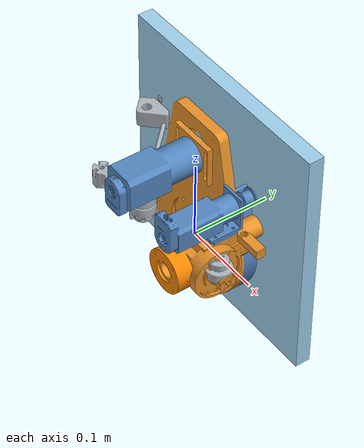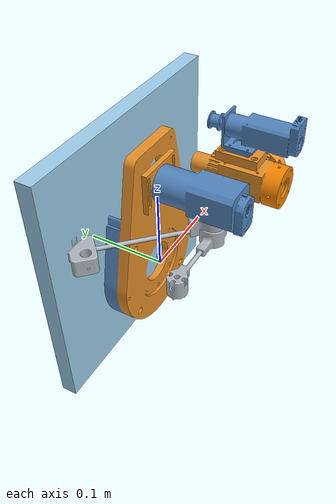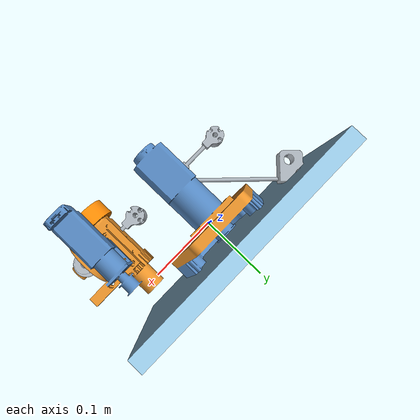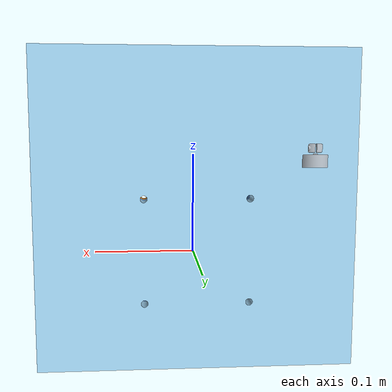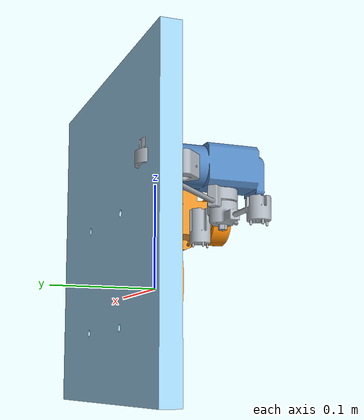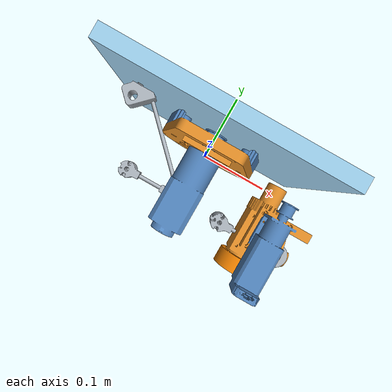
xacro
<?xml version="1.0"?>
<!-- Scara manipulator -->
<robot xmlns:xacro="http://www.ros.org/wiki/xacro" name="scara">

    <!-- Import scara urdf file -->
    <xacro:include filename="$(find scara_description)/urdf/scara.urdf" />

    <!-- Import scara materials file -->
    <xacro:include filename="$(find scara_description)/config/materials.urdf" />

    <!-- Import scara ros2_control description -->
    <xacro:include filename="$(find scara_description)/ros2_control/scara_fsoe_ecat.ros2_control.urdf" />

</robot>

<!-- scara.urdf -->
<robot Name = "Pantograph" xmlns:xacro="http://www.ros.org/wiki/xacro">

  <!-- Used for fixing robot to 'base_link' -->
  <link name="world"/>

  <!-- Base Link -->
  <link name = "base_link">
    <visual>
      <geometry>
        <mesh filename="file:///home/ada/ws1612/src/ecat_ros2_workshop/scara_description/urdf/meshes/base.dae"/>
      </geometry>
      <origin xyz = "0 0 0" rpy = "1.5708 0 0"/>
    </visual>
  </link>

  <joint name="joint_base_to_pantograph" type="fixed">
     <parent link="world"/>
     <child link="base_link"/>
  </joint>

  <!-- Link 1-->
  <link name = "link1">
    <visual>
      <geometry>
        <mesh filename="file:///home/ada/ws1612/src/ecat_ros2_workshop/scara_description/urdf/meshes/link1.dae"/>
      </geometry>
      <origin xyz="0 0 0" rpy="0 0 0"/>
    </visual>
  </link>

  <joint name="joint1" type="continuous">
     <parent link="base_link"/>
     <child link="link1"/>
     <origin xyz="-0.08 -0.07 0.035" rpy="0 0 0"/>
     <axis xyz="0 0 1"/>
     <limit lower="-3.14" upper="3.14" effort="10" velocity="1.0"/>
  </joint>

  <!-- Link 2-->
  <link name = "link2">
    <visual>
      <geometry>
        <mesh filename="file:///home/ada/ws1612/src/ecat_ros2_workshop/scara_description/urdf/meshes/link2.dae"/>
      </geometry>
      <origin xyz = "0 0 0" rpy = "0 0 0"/>
    </visual>
  </link>

  <joint name="joint2" type="continuous">
     <parent link="link1"/>
     <child link="link2"/>
     <origin xyz="0.08 0 0.054" rpy="1.5708 0 0"/>
     <axis xyz="0 1 0"/>
     <limit lower="-3.14" upper="3.14" effort="10" velocity="1.0"/>
  </joint>
  <!-- Link 3-->
  <link name = "link3">
    <visual>
      <geometry>
        <mesh filename="file:///home/ada/ws1612/src/ecat_ros2_workshop/scara_description/urdf/meshes/link4.dae"/>
      </geometry>
      <origin xyz = "0 0 0" rpy = "0 0 0"/>
    </visual>
  </link>

  <joint name="joint3" type="continuous">
     <parent link="base_link"/>
     <child link="link3"/>
     <origin xyz="0.058 -0.07 0.035" rpy="0 0 0"/>
     <axis xyz="0 0 1"/>
     <limit lower="-3.14" upper="3.14" effort="10" velocity="1.0"/>
  </joint>
  <!-- Link 4-->
  <link name = "link4">
    <visual>
      <geometry>
        <mesh filename="file:///home/ada/ws1612/src/ecat_ros2_workshop/scara_description/urdf/meshes/link3.dae"/>
      </geometry>
      <origin xyz = "0 0 0" rpy = "-1.57 0 0"/>
    </visual>
  </link>

  <joint name="joint4" type="continuous">
     <parent link="link3"/>
     <child link="link4"/>
     <origin xyz="0.079 0 0.053" rpy="0 0 0"/>
     <axis xyz="0 0 1"/>
     <limit lower="-3.14" upper="3.14" effort="10" velocity="1.0"/>
  </joint>

</robot>

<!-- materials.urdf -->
<robot>

  <!-- Define material -->
  <!-- Notice that this can only be seen in rviz -->

  <material name="black">
    <color rgba="0.0 0.0 0.0 1.0"/>
  </material>

  <material name="blue">
    <color rgba="0.0 0.0 0.8 1.0"/>
  </material>

  <material name="green">
    <color rgba="0.0 0.8 0.0 1.0"/>
  </material>

  <material name="grey">
    <color rgba="0.2 0.2 0.2 1.0"/>
  </material>

  <material name="orange">
    <color rgba="${255/255} ${108/255} ${10/255} 1.0"/>
  </material>

  <material name="brown">
    <color rgba="${222/255} ${207/255} ${195/255} 1.0"/>
  </material>

  <material name="red">
    <color rgba="0.8 0.0 0.0 1.0"/>
  </material>

  <material name="white">
    <color rgba="1.0 1.0 1.0 1.0"/>
  </material>

  <material name="yellow">
    <color rgba="1.0 1.0 0.0 1.0"/>
  </material>

</robot>
